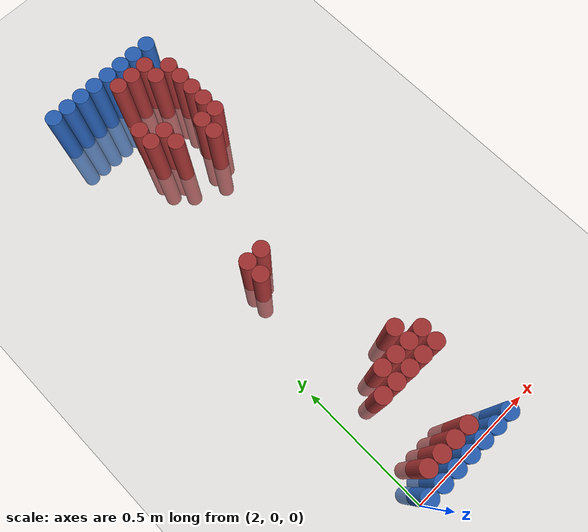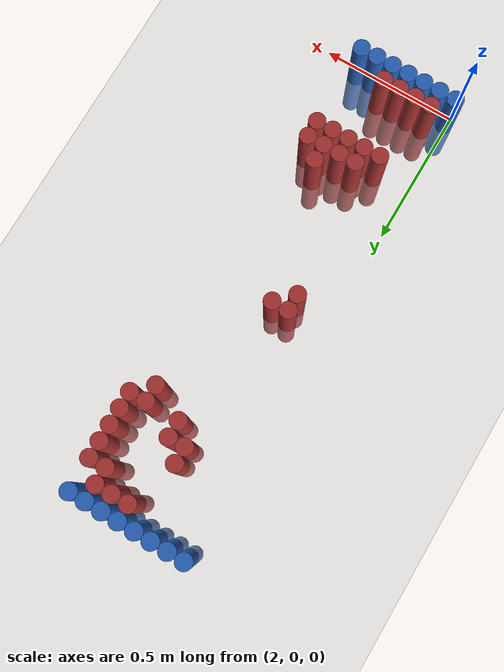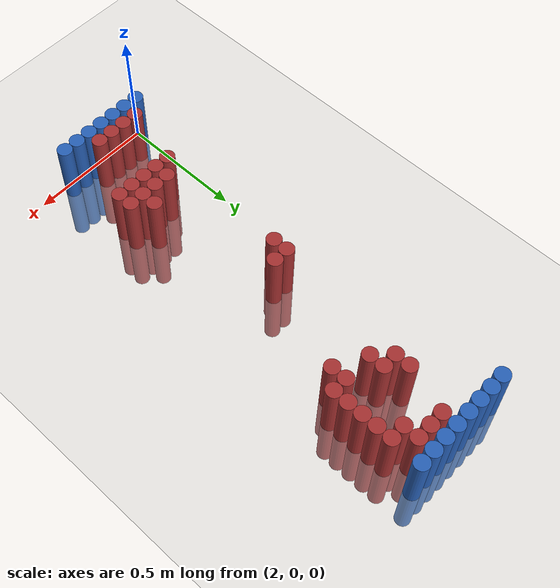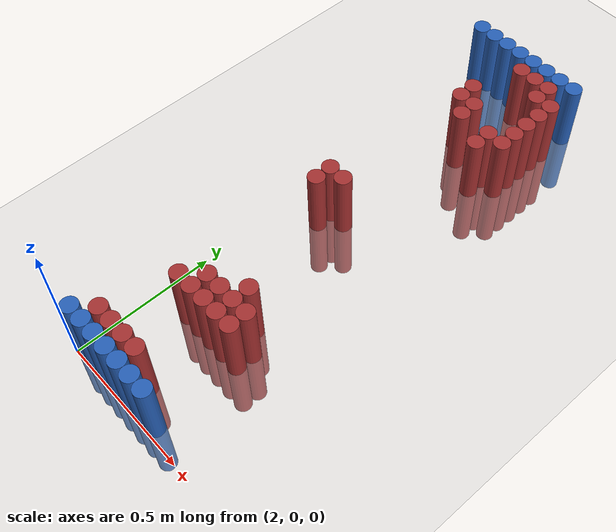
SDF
<sdf version="1.6">
 <world name="default">
  <model name="ground_plane">
   <static>1</static>
   <link name="link">
    <collision name="collision">
     <geometry><plane><normal>0 0 1</normal><size>100 100</size></plane></geometry>
     <surface><friction><ode><mu>100</mu><mu2>50</mu2></ode></friction></surface>
    </collision>
    <visual name="visual">
     <cast_shadows>0</cast_shadows>
     <geometry><plane><normal>0 0 1</normal><size>100 100</size></plane></geometry>
     <material>
      <script><uri>file://media/materials/scripts/gazebo.material</uri><name>Gazebo/Grey</name></script>
     </material>
    </visual>
   </link>
  </model>
  <model name="unit_cylinder_93">
   <static>1</static>
   <pose>2.010000 0.030000 0.000000 0.000000 0.000000 0.000000</pose>
   <link name="link">
    <inertial>
     <mass>1</mass>
     <inertia><ixx>0.145833</ixx><ixy>0</ixy><ixz>0</ixz><iyy>0.145833</iyy><iyz>0</iyz><izz>0.125</izz></inertia>
    </inertial>
    <collision name="collision">
     <geometry><cylinder><radius>0.030000</radius><length>0.5</length></cylinder></geometry>
    </collision>
    <visual name="visual">
     <geometry><cylinder><radius>0.030000</radius><length>0.5</length></cylinder></geometry>
     <material>
      <ambient>0.152000 0.379000 0.720000 1</ambient>
      <diffuse>0.152000 0.379000 0.720000 1</diffuse>
     </material>
     <material>
      <script><name>Gazebo/Grey</name><uri>file://media/materials/scripts/gazebo.material</uri></script>
     </material>
    </visual>
   </link>
  </model>
  <model name="unit_cylinder_94">
   <static>1</static>
   <pose>2.010000 1.770000 0.000000 0.000000 0.000000 0.000000</pose>
   <link name="link">
    <inertial>
     <mass>1</mass>
     <inertia><ixx>0.145833</ixx><ixy>0</ixy><ixz>0</ixz><iyy>0.145833</iyy><iyz>0</iyz><izz>0.125</izz></inertia>
    </inertial>
    <collision name="collision">
     <geometry><cylinder><radius>0.030000</radius><length>0.5</length></cylinder></geometry>
    </collision>
    <visual name="visual">
     <geometry><cylinder><radius>0.030000</radius><length>0.5</length></cylinder></geometry>
     <material>
      <ambient>0.152000 0.379000 0.720000 1</ambient>
      <diffuse>0.152000 0.379000 0.720000 1</diffuse>
     </material>
     <material>
      <script><name>Gazebo/Grey</name><uri>file://media/materials/scripts/gazebo.material</uri></script>
     </material>
    </visual>
   </link>
  </model>
  <model name="unit_cylinder_95">
   <static>1</static>
   <pose>2.070000 1.770000 0.000000 0.000000 0.000000 0.000000</pose>
   <link name="link">
    <inertial>
     <mass>1</mass>
     <inertia><ixx>0.145833</ixx><ixy>0</ixy><ixz>0</ixz><iyy>0.145833</iyy><iyz>0</iyz><izz>0.125</izz></inertia>
    </inertial>
    <collision name="collision">
     <geometry><cylinder><radius>0.030000</radius><length>0.5</length></cylinder></geometry>
    </collision>
    <visual name="visual">
     <geometry><cylinder><radius>0.030000</radius><length>0.5</length></cylinder></geometry>
     <material>
      <ambient>0.152000 0.379000 0.720000 1</ambient>
      <diffuse>0.152000 0.379000 0.720000 1</diffuse>
     </material>
     <material>
      <script><name>Gazebo/Grey</name><uri>file://media/materials/scripts/gazebo.material</uri></script>
     </material>
    </visual>
   </link>
  </model>
  <model name="unit_cylinder_96">
   <static>1</static>
   <pose>2.130000 1.770000 0.000000 0.000000 0.000000 0.000000</pose>
   <link name="link">
    <inertial>
     <mass>1</mass>
     <inertia><ixx>0.145833</ixx><ixy>0</ixy><ixz>0</ixz><iyy>0.145833</iyy><iyz>0</iyz><izz>0.125</izz></inertia>
    </inertial>
    <collision name="collision">
     <geometry><cylinder><radius>0.030000</radius><length>0.5</length></cylinder></geometry>
    </collision>
    <visual name="visual">
     <geometry><cylinder><radius>0.030000</radius><length>0.5</length></cylinder></geometry>
     <material>
      <ambient>0.152000 0.379000 0.720000 1</ambient>
      <diffuse>0.152000 0.379000 0.720000 1</diffuse>
     </material>
     <material>
      <script><name>Gazebo/Grey</name><uri>file://media/materials/scripts/gazebo.material</uri></script>
     </material>
    </visual>
   </link>
  </model>
  <model name="unit_cylinder_97">
   <static>1</static>
   <pose>2.190000 1.770000 0.000000 0.000000 0.000000 0.000000</pose>
   <link name="link">
    <inertial>
     <mass>1</mass>
     <inertia><ixx>0.145833</ixx><ixy>0</ixy><ixz>0</ixz><iyy>0.145833</iyy><iyz>0</iyz><izz>0.125</izz></inertia>
    </inertial>
    <collision name="collision">
     <geometry><cylinder><radius>0.030000</radius><length>0.5</length></cylinder></geometry>
    </collision>
    <visual name="visual">
     <geometry><cylinder><radius>0.030000</radius><length>0.5</length></cylinder></geometry>
     <material>
      <ambient>0.152000 0.379000 0.720000 1</ambient>
      <diffuse>0.152000 0.379000 0.720000 1</diffuse>
     </material>
     <material>
      <script><name>Gazebo/Grey</name><uri>file://media/materials/scripts/gazebo.material</uri></script>
     </material>
    </visual>
   </link>
  </model>
  <model name="unit_cylinder_98">
   <static>1</static>
   <pose>2.250000 1.770000 0.000000 0.000000 0.000000 0.000000</pose>
   <link name="link">
    <inertial>
     <mass>1</mass>
     <inertia><ixx>0.145833</ixx><ixy>0</ixy><ixz>0</ixz><iyy>0.145833</iyy><iyz>0</iyz><izz>0.125</izz></inertia>
    </inertial>
    <collision name="collision">
     <geometry><cylinder><radius>0.030000</radius><length>0.5</length></cylinder></geometry>
    </collision>
    <visual name="visual">
     <geometry><cylinder><radius>0.030000</radius><length>0.5</length></cylinder></geometry>
     <material>
      <ambient>0.152000 0.379000 0.720000 1</ambient>
      <diffuse>0.152000 0.379000 0.720000 1</diffuse>
     </material>
     <material>
      <script><name>Gazebo/Grey</name><uri>file://media/materials/scripts/gazebo.material</uri></script>
     </material>
    </visual>
   </link>
  </model>
  <model name="unit_cylinder_99">
   <static>1</static>
   <pose>2.310000 1.770000 0.000000 0.000000 0.000000 0.000000</pose>
   <link name="link">
    <inertial>
     <mass>1</mass>
     <inertia><ixx>0.145833</ixx><ixy>0</ixy><ixz>0</ixz><iyy>0.145833</iyy><iyz>0</iyz><izz>0.125</izz></inertia>
    </inertial>
    <collision name="collision">
     <geometry><cylinder><radius>0.030000</radius><length>0.5</length></cylinder></geometry>
    </collision>
    <visual name="visual">
     <geometry><cylinder><radius>0.030000</radius><length>0.5</length></cylinder></geometry>
     <material>
      <ambient>0.152000 0.379000 0.720000 1</ambient>
      <diffuse>0.152000 0.379000 0.720000 1</diffuse>
     </material>
     <material>
      <script><name>Gazebo/Grey</name><uri>file://media/materials/scripts/gazebo.material</uri></script>
     </material>
    </visual>
   </link>
  </model>
  <model name="unit_cylinder_100">
   <static>1</static>
   <pose>2.370000 1.770000 0.000000 0.000000 0.000000 0.000000</pose>
   <link name="link">
    <inertial>
     <mass>1</mass>
     <inertia><ixx>0.145833</ixx><ixy>0</ixy><ixz>0</ixz><iyy>0.145833</iyy><iyz>0</iyz><izz>0.125</izz></inertia>
    </inertial>
    <collision name="collision">
     <geometry><cylinder><radius>0.030000</radius><length>0.5</length></cylinder></geometry>
    </collision>
    <visual name="visual">
     <geometry><cylinder><radius>0.030000</radius><length>0.5</length></cylinder></geometry>
     <material>
      <ambient>0.152000 0.379000 0.720000 1</ambient>
      <diffuse>0.152000 0.379000 0.720000 1</diffuse>
     </material>
     <material>
      <script><name>Gazebo/Grey</name><uri>file://media/materials/scripts/gazebo.material</uri></script>
     </material>
    </visual>
   </link>
  </model>
  <model name="unit_cylinder_101">
   <static>1</static>
   <pose>2.430000 1.770000 0.000000 0.000000 0.000000 0.000000</pose>
   <link name="link">
    <inertial>
     <mass>1</mass>
     <inertia><ixx>0.145833</ixx><ixy>0</ixy><ixz>0</ixz><iyy>0.145833</iyy><iyz>0</iyz><izz>0.125</izz></inertia>
    </inertial>
    <collision name="collision">
     <geometry><cylinder><radius>0.030000</radius><length>0.5</length></cylinder></geometry>
    </collision>
    <visual name="visual">
     <geometry><cylinder><radius>0.030000</radius><length>0.5</length></cylinder></geometry>
     <material>
      <ambient>0.152000 0.379000 0.720000 1</ambient>
      <diffuse>0.152000 0.379000 0.720000 1</diffuse>
     </material>
     <material>
      <script><name>Gazebo/Grey</name><uri>file://media/materials/scripts/gazebo.material</uri></script>
     </material>
    </visual>
   </link>
  </model>
  <model name="unit_cylinder_125">
   <static>1</static>
   <pose>2.250000 1.710000 0.000000 0.000000 0.000000 0.000000</pose>
   <link name="link">
    <inertial>
     <mass>1</mass>
     <inertia><ixx>0.145833</ixx><ixy>0</ixy><ixz>0</ixz><iyy>0.145833</iyy><iyz>0</iyz><izz>0.125</izz></inertia>
    </inertial>
    <collision name="collision">
     <geometry><cylinder><radius>0.030000</radius><length>0.5</length></cylinder></geometry>
    </collision>
    <visual name="visual">
     <geometry><cylinder><radius>0.030000</radius><length>0.5</length></cylinder></geometry>
     <material>
      <ambient>0.648000 0.192000 0.192000 1</ambient>
      <diffuse>0.648000 0.192000 0.192000 1</diffuse>
     </material>
     <material>
      <script><name>Gazebo/Grey</name><uri>file://media/materials/scripts/gazebo.material</uri></script>
     </material>
    </visual>
   </link>
  </model>
  <model name="unit_cylinder_126">
   <static>1</static>
   <pose>2.310000 1.710000 0.000000 0.000000 0.000000 0.000000</pose>
   <link name="link">
    <inertial>
     <mass>1</mass>
     <inertia><ixx>0.145833</ixx><ixy>0</ixy><ixz>0</ixz><iyy>0.145833</iyy><iyz>0</iyz><izz>0.125</izz></inertia>
    </inertial>
    <collision name="collision">
     <geometry><cylinder><radius>0.030000</radius><length>0.5</length></cylinder></geometry>
    </collision>
    <visual name="visual">
     <geometry><cylinder><radius>0.030000</radius><length>0.5</length></cylinder></geometry>
     <material>
      <ambient>0.648000 0.192000 0.192000 1</ambient>
      <diffuse>0.648000 0.192000 0.192000 1</diffuse>
     </material>
     <material>
      <script><name>Gazebo/Grey</name><uri>file://media/materials/scripts/gazebo.material</uri></script>
     </material>
    </visual>
   </link>
  </model>
  <model name="unit_cylinder_127">
   <static>1</static>
   <pose>2.370000 1.710000 0.000000 0.000000 0.000000 0.000000</pose>
   <link name="link">
    <inertial>
     <mass>1</mass>
     <inertia><ixx>0.145833</ixx><ixy>0</ixy><ixz>0</ixz><iyy>0.145833</iyy><iyz>0</iyz><izz>0.125</izz></inertia>
    </inertial>
    <collision name="collision">
     <geometry><cylinder><radius>0.030000</radius><length>0.5</length></cylinder></geometry>
    </collision>
    <visual name="visual">
     <geometry><cylinder><radius>0.030000</radius><length>0.5</length></cylinder></geometry>
     <material>
      <ambient>0.648000 0.192000 0.192000 1</ambient>
      <diffuse>0.648000 0.192000 0.192000 1</diffuse>
     </material>
     <material>
      <script><name>Gazebo/Grey</name><uri>file://media/materials/scripts/gazebo.material</uri></script>
     </material>
    </visual>
   </link>
  </model>
  <model name="unit_cylinder_138">
   <static>1</static>
   <pose>2.370000 1.650000 0.000000 0.000000 0.000000 0.000000</pose>
   <link name="link">
    <inertial>
     <mass>1</mass>
     <inertia><ixx>0.145833</ixx><ixy>0</ixy><ixz>0</ixz><iyy>0.145833</iyy><iyz>0</iyz><izz>0.125</izz></inertia>
    </inertial>
    <collision name="collision">
     <geometry><cylinder><radius>0.030000</radius><length>0.5</length></cylinder></geometry>
    </collision>
    <visual name="visual">
     <geometry><cylinder><radius>0.030000</radius><length>0.5</length></cylinder></geometry>
     <material>
      <ambient>0.648000 0.192000 0.192000 1</ambient>
      <diffuse>0.648000 0.192000 0.192000 1</diffuse>
     </material>
     <material>
      <script><name>Gazebo/Grey</name><uri>file://media/materials/scripts/gazebo.material</uri></script>
     </material>
    </visual>
   </link>
  </model>
  <model name="unit_cylinder_139">
   <static>1</static>
   <pose>2.430000 1.650000 0.000000 0.000000 0.000000 0.000000</pose>
   <link name="link">
    <inertial>
     <mass>1</mass>
     <inertia><ixx>0.145833</ixx><ixy>0</ixy><ixz>0</ixz><iyy>0.145833</iyy><iyz>0</iyz><izz>0.125</izz></inertia>
    </inertial>
    <collision name="collision">
     <geometry><cylinder><radius>0.030000</radius><length>0.5</length></cylinder></geometry>
    </collision>
    <visual name="visual">
     <geometry><cylinder><radius>0.030000</radius><length>0.5</length></cylinder></geometry>
     <material>
      <ambient>0.648000 0.192000 0.192000 1</ambient>
      <diffuse>0.648000 0.192000 0.192000 1</diffuse>
     </material>
     <material>
      <script><name>Gazebo/Grey</name><uri>file://media/materials/scripts/gazebo.material</uri></script>
     </material>
    </visual>
   </link>
  </model>
  <model name="unit_cylinder_147">
   <static>1</static>
   <pose>2.430000 1.590000 0.000000 0.000000 0.000000 0.000000</pose>
   <link name="link">
    <inertial>
     <mass>1</mass>
     <inertia><ixx>0.145833</ixx><ixy>0</ixy><ixz>0</ixz><iyy>0.145833</iyy><iyz>0</iyz><izz>0.125</izz></inertia>
    </inertial>
    <collision name="collision">
     <geometry><cylinder><radius>0.030000</radius><length>0.5</length></cylinder></geometry>
    </collision>
    <visual name="visual">
     <geometry><cylinder><radius>0.030000</radius><length>0.5</length></cylinder></geometry>
     <material>
      <ambient>0.648000 0.192000 0.192000 1</ambient>
      <diffuse>0.648000 0.192000 0.192000 1</diffuse>
     </material>
     <material>
      <script><name>Gazebo/Grey</name><uri>file://media/materials/scripts/gazebo.material</uri></script>
     </material>
    </visual>
   </link>
  </model>
  <model name="unit_cylinder_156">
   <static>1</static>
   <pose>2.190000 1.530000 0.000000 0.000000 0.000000 0.000000</pose>
   <link name="link">
    <inertial>
     <mass>1</mass>
     <inertia><ixx>0.145833</ixx><ixy>0</ixy><ixz>0</ixz><iyy>0.145833</iyy><iyz>0</iyz><izz>0.125</izz></inertia>
    </inertial>
    <collision name="collision">
     <geometry><cylinder><radius>0.030000</radius><length>0.5</length></cylinder></geometry>
    </collision>
    <visual name="visual">
     <geometry><cylinder><radius>0.030000</radius><length>0.5</length></cylinder></geometry>
     <material>
      <ambient>0.648000 0.192000 0.192000 1</ambient>
      <diffuse>0.648000 0.192000 0.192000 1</diffuse>
     </material>
     <material>
      <script><name>Gazebo/Grey</name><uri>file://media/materials/scripts/gazebo.material</uri></script>
     </material>
    </visual>
   </link>
  </model>
  <model name="unit_cylinder_157">
   <static>1</static>
   <pose>2.430000 1.530000 0.000000 0.000000 0.000000 0.000000</pose>
   <link name="link">
    <inertial>
     <mass>1</mass>
     <inertia><ixx>0.145833</ixx><ixy>0</ixy><ixz>0</ixz><iyy>0.145833</iyy><iyz>0</iyz><izz>0.125</izz></inertia>
    </inertial>
    <collision name="collision">
     <geometry><cylinder><radius>0.030000</radius><length>0.5</length></cylinder></geometry>
    </collision>
    <visual name="visual">
     <geometry><cylinder><radius>0.030000</radius><length>0.5</length></cylinder></geometry>
     <material>
      <ambient>0.648000 0.192000 0.192000 1</ambient>
      <diffuse>0.648000 0.192000 0.192000 1</diffuse>
     </material>
     <material>
      <script><name>Gazebo/Grey</name><uri>file://media/materials/scripts/gazebo.material</uri></script>
     </material>
    </visual>
   </link>
  </model>
  <model name="unit_cylinder_159">
   <static>1</static>
   <pose>2.190000 1.470000 0.000000 0.000000 0.000000 0.000000</pose>
   <link name="link">
    <inertial>
     <mass>1</mass>
     <inertia><ixx>0.145833</ixx><ixy>0</ixy><ixz>0</ixz><iyy>0.145833</iyy><iyz>0</iyz><izz>0.125</izz></inertia>
    </inertial>
    <collision name="collision">
     <geometry><cylinder><radius>0.030000</radius><length>0.5</length></cylinder></geometry>
    </collision>
    <visual name="visual">
     <geometry><cylinder><radius>0.030000</radius><length>0.5</length></cylinder></geometry>
     <material>
      <ambient>0.648000 0.192000 0.192000 1</ambient>
      <diffuse>0.648000 0.192000 0.192000 1</diffuse>
     </material>
     <material>
      <script><name>Gazebo/Grey</name><uri>file://media/materials/scripts/gazebo.material</uri></script>
     </material>
    </visual>
   </link>
  </model>
  <model name="unit_cylinder_160">
   <static>1</static>
   <pose>2.250000 1.470000 0.000000 0.000000 0.000000 0.000000</pose>
   <link name="link">
    <inertial>
     <mass>1</mass>
     <inertia><ixx>0.145833</ixx><ixy>0</ixy><ixz>0</ixz><iyy>0.145833</iyy><iyz>0</iyz><izz>0.125</izz></inertia>
    </inertial>
    <collision name="collision">
     <geometry><cylinder><radius>0.030000</radius><length>0.5</length></cylinder></geometry>
    </collision>
    <visual name="visual">
     <geometry><cylinder><radius>0.030000</radius><length>0.5</length></cylinder></geometry>
     <material>
      <ambient>0.648000 0.192000 0.192000 1</ambient>
      <diffuse>0.648000 0.192000 0.192000 1</diffuse>
     </material>
     <material>
      <script><name>Gazebo/Grey</name><uri>file://media/materials/scripts/gazebo.material</uri></script>
     </material>
    </visual>
   </link>
  </model>
  <model name="unit_cylinder_161">
   <static>1</static>
   <pose>2.430000 1.470000 0.000000 0.000000 0.000000 0.000000</pose>
   <link name="link">
    <inertial>
     <mass>1</mass>
     <inertia><ixx>0.145833</ixx><ixy>0</ixy><ixz>0</ixz><iyy>0.145833</iyy><iyz>0</iyz><izz>0.125</izz></inertia>
    </inertial>
    <collision name="collision">
     <geometry><cylinder><radius>0.030000</radius><length>0.5</length></cylinder></geometry>
    </collision>
    <visual name="visual">
     <geometry><cylinder><radius>0.030000</radius><length>0.5</length></cylinder></geometry>
     <material>
      <ambient>0.648000 0.192000 0.192000 1</ambient>
      <diffuse>0.648000 0.192000 0.192000 1</diffuse>
     </material>
     <material>
      <script><name>Gazebo/Grey</name><uri>file://media/materials/scripts/gazebo.material</uri></script>
     </material>
    </visual>
   </link>
  </model>
  <model name="unit_cylinder_163">
   <static>1</static>
   <pose>2.250000 1.410000 0.000000 0.000000 0.000000 0.000000</pose>
   <link name="link">
    <inertial>
     <mass>1</mass>
     <inertia><ixx>0.145833</ixx><ixy>0</ixy><ixz>0</ixz><iyy>0.145833</iyy><iyz>0</iyz><izz>0.125</izz></inertia>
    </inertial>
    <collision name="collision">
     <geometry><cylinder><radius>0.030000</radius><length>0.5</length></cylinder></geometry>
    </collision>
    <visual name="visual">
     <geometry><cylinder><radius>0.030000</radius><length>0.5</length></cylinder></geometry>
     <material>
      <ambient>0.648000 0.192000 0.192000 1</ambient>
      <diffuse>0.648000 0.192000 0.192000 1</diffuse>
     </material>
     <material>
      <script><name>Gazebo/Grey</name><uri>file://media/materials/scripts/gazebo.material</uri></script>
     </material>
    </visual>
   </link>
  </model>
  <model name="unit_cylinder_164">
   <static>1</static>
   <pose>2.370000 1.410000 0.000000 0.000000 0.000000 0.000000</pose>
   <link name="link">
    <inertial>
     <mass>1</mass>
     <inertia><ixx>0.145833</ixx><ixy>0</ixy><ixz>0</ixz><iyy>0.145833</iyy><iyz>0</iyz><izz>0.125</izz></inertia>
    </inertial>
    <collision name="collision">
     <geometry><cylinder><radius>0.030000</radius><length>0.5</length></cylinder></geometry>
    </collision>
    <visual name="visual">
     <geometry><cylinder><radius>0.030000</radius><length>0.5</length></cylinder></geometry>
     <material>
      <ambient>0.648000 0.192000 0.192000 1</ambient>
      <diffuse>0.648000 0.192000 0.192000 1</diffuse>
     </material>
     <material>
      <script><name>Gazebo/Grey</name><uri>file://media/materials/scripts/gazebo.material</uri></script>
     </material>
    </visual>
   </link>
  </model>
  <model name="unit_cylinder_165">
   <static>1</static>
   <pose>2.430000 1.410000 0.000000 0.000000 0.000000 0.000000</pose>
   <link name="link">
    <inertial>
     <mass>1</mass>
     <inertia><ixx>0.145833</ixx><ixy>0</ixy><ixz>0</ixz><iyy>0.145833</iyy><iyz>0</iyz><izz>0.125</izz></inertia>
    </inertial>
    <collision name="collision">
     <geometry><cylinder><radius>0.030000</radius><length>0.5</length></cylinder></geometry>
    </collision>
    <visual name="visual">
     <geometry><cylinder><radius>0.030000</radius><length>0.5</length></cylinder></geometry>
     <material>
      <ambient>0.648000 0.192000 0.192000 1</ambient>
      <diffuse>0.648000 0.192000 0.192000 1</diffuse>
     </material>
     <material>
      <script><name>Gazebo/Grey</name><uri>file://media/materials/scripts/gazebo.material</uri></script>
     </material>
    </visual>
   </link>
  </model>
  <model name="unit_cylinder_167">
   <static>1</static>
   <pose>2.370000 1.350000 0.000000 0.000000 0.000000 0.000000</pose>
   <link name="link">
    <inertial>
     <mass>1</mass>
     <inertia><ixx>0.145833</ixx><ixy>0</ixy><ixz>0</ixz><iyy>0.145833</iyy><iyz>0</iyz><izz>0.125</izz></inertia>
    </inertial>
    <collision name="collision">
     <geometry><cylinder><radius>0.030000</radius><length>0.5</length></cylinder></geometry>
    </collision>
    <visual name="visual">
     <geometry><cylinder><radius>0.030000</radius><length>0.5</length></cylinder></geometry>
     <material>
      <ambient>0.648000 0.192000 0.192000 1</ambient>
      <diffuse>0.648000 0.192000 0.192000 1</diffuse>
     </material>
     <material>
      <script><name>Gazebo/Grey</name><uri>file://media/materials/scripts/gazebo.material</uri></script>
     </material>
    </visual>
   </link>
  </model>
  <model name="unit_cylinder_180">
   <static>1</static>
   <pose>2.130000 0.930000 0.000000 0.000000 0.000000 0.000000</pose>
   <link name="link">
    <inertial>
     <mass>1</mass>
     <inertia><ixx>0.145833</ixx><ixy>0</ixy><ixz>0</ixz><iyy>0.145833</iyy><iyz>0</iyz><izz>0.125</izz></inertia>
    </inertial>
    <collision name="collision">
     <geometry><cylinder><radius>0.030000</radius><length>0.5</length></cylinder></geometry>
    </collision>
    <visual name="visual">
     <geometry><cylinder><radius>0.030000</radius><length>0.5</length></cylinder></geometry>
     <material>
      <ambient>0.648000 0.192000 0.192000 1</ambient>
      <diffuse>0.648000 0.192000 0.192000 1</diffuse>
     </material>
     <material>
      <script><name>Gazebo/Grey</name><uri>file://media/materials/scripts/gazebo.material</uri></script>
     </material>
    </visual>
   </link>
  </model>
  <model name="unit_cylinder_181">
   <static>1</static>
   <pose>2.190000 0.930000 0.000000 0.000000 0.000000 0.000000</pose>
   <link name="link">
    <inertial>
     <mass>1</mass>
     <inertia><ixx>0.145833</ixx><ixy>0</ixy><ixz>0</ixz><iyy>0.145833</iyy><iyz>0</iyz><izz>0.125</izz></inertia>
    </inertial>
    <collision name="collision">
     <geometry><cylinder><radius>0.030000</radius><length>0.5</length></cylinder></geometry>
    </collision>
    <visual name="visual">
     <geometry><cylinder><radius>0.030000</radius><length>0.5</length></cylinder></geometry>
     <material>
      <ambient>0.648000 0.192000 0.192000 1</ambient>
      <diffuse>0.648000 0.192000 0.192000 1</diffuse>
     </material>
     <material>
      <script><name>Gazebo/Grey</name><uri>file://media/materials/scripts/gazebo.material</uri></script>
     </material>
    </visual>
   </link>
  </model>
  <model name="unit_cylinder_182">
   <static>1</static>
   <pose>2.130000 0.870000 0.000000 0.000000 0.000000 0.000000</pose>
   <link name="link">
    <inertial>
     <mass>1</mass>
     <inertia><ixx>0.145833</ixx><ixy>0</ixy><ixz>0</ixz><iyy>0.145833</iyy><iyz>0</iyz><izz>0.125</izz></inertia>
    </inertial>
    <collision name="collision">
     <geometry><cylinder><radius>0.030000</radius><length>0.5</length></cylinder></geometry>
    </collision>
    <visual name="visual">
     <geometry><cylinder><radius>0.030000</radius><length>0.5</length></cylinder></geometry>
     <material>
      <ambient>0.648000 0.192000 0.192000 1</ambient>
      <diffuse>0.648000 0.192000 0.192000 1</diffuse>
     </material>
     <material>
      <script><name>Gazebo/Grey</name><uri>file://media/materials/scripts/gazebo.material</uri></script>
     </material>
    </visual>
   </link>
  </model>
  <model name="unit_cylinder_197">
   <static>1</static>
   <pose>2.310000 0.450000 0.000000 0.000000 0.000000 0.000000</pose>
   <link name="link">
    <inertial>
     <mass>1</mass>
     <inertia><ixx>0.145833</ixx><ixy>0</ixy><ixz>0</ixz><iyy>0.145833</iyy><iyz>0</iyz><izz>0.125</izz></inertia>
    </inertial>
    <collision name="collision">
     <geometry><cylinder><radius>0.030000</radius><length>0.5</length></cylinder></geometry>
    </collision>
    <visual name="visual">
     <geometry><cylinder><radius>0.030000</radius><length>0.5</length></cylinder></geometry>
     <material>
      <ambient>0.648000 0.192000 0.192000 1</ambient>
      <diffuse>0.648000 0.192000 0.192000 1</diffuse>
     </material>
     <material>
      <script><name>Gazebo/Grey</name><uri>file://media/materials/scripts/gazebo.material</uri></script>
     </material>
    </visual>
   </link>
  </model>
  <model name="unit_cylinder_199">
   <static>1</static>
   <pose>2.190000 0.390000 0.000000 0.000000 0.000000 0.000000</pose>
   <link name="link">
    <inertial>
     <mass>1</mass>
     <inertia><ixx>0.145833</ixx><ixy>0</ixy><ixz>0</ixz><iyy>0.145833</iyy><iyz>0</iyz><izz>0.125</izz></inertia>
    </inertial>
    <collision name="collision">
     <geometry><cylinder><radius>0.030000</radius><length>0.5</length></cylinder></geometry>
    </collision>
    <visual name="visual">
     <geometry><cylinder><radius>0.030000</radius><length>0.5</length></cylinder></geometry>
     <material>
      <ambient>0.648000 0.192000 0.192000 1</ambient>
      <diffuse>0.648000 0.192000 0.192000 1</diffuse>
     </material>
     <material>
      <script><name>Gazebo/Grey</name><uri>file://media/materials/scripts/gazebo.material</uri></script>
     </material>
    </visual>
   </link>
  </model>
  <model name="unit_cylinder_200">
   <static>1</static>
   <pose>2.250000 0.390000 0.000000 0.000000 0.000000 0.000000</pose>
   <link name="link">
    <inertial>
     <mass>1</mass>
     <inertia><ixx>0.145833</ixx><ixy>0</ixy><ixz>0</ixz><iyy>0.145833</iyy><iyz>0</iyz><izz>0.125</izz></inertia>
    </inertial>
    <collision name="collision">
     <geometry><cylinder><radius>0.030000</radius><length>0.5</length></cylinder></geometry>
    </collision>
    <visual name="visual">
     <geometry><cylinder><radius>0.030000</radius><length>0.5</length></cylinder></geometry>
     <material>
      <ambient>0.648000 0.192000 0.192000 1</ambient>
      <diffuse>0.648000 0.192000 0.192000 1</diffuse>
     </material>
     <material>
      <script><name>Gazebo/Grey</name><uri>file://media/materials/scripts/gazebo.material</uri></script>
     </material>
    </visual>
   </link>
  </model>
  <model name="unit_cylinder_201">
   <static>1</static>
   <pose>2.310000 0.390000 0.000000 0.000000 0.000000 0.000000</pose>
   <link name="link">
    <inertial>
     <mass>1</mass>
     <inertia><ixx>0.145833</ixx><ixy>0</ixy><ixz>0</ixz><iyy>0.145833</iyy><iyz>0</iyz><izz>0.125</izz></inertia>
    </inertial>
    <collision name="collision">
     <geometry><cylinder><radius>0.030000</radius><length>0.5</length></cylinder></geometry>
    </collision>
    <visual name="visual">
     <geometry><cylinder><radius>0.030000</radius><length>0.5</length></cylinder></geometry>
     <material>
      <ambient>0.648000 0.192000 0.192000 1</ambient>
      <diffuse>0.648000 0.192000 0.192000 1</diffuse>
     </material>
     <material>
      <script><name>Gazebo/Grey</name><uri>file://media/materials/scripts/gazebo.material</uri></script>
     </material>
    </visual>
   </link>
  </model>
  <model name="unit_cylinder_202">
   <static>1</static>
   <pose>2.370000 0.390000 0.000000 0.000000 0.000000 0.000000</pose>
   <link name="link">
    <inertial>
     <mass>1</mass>
     <inertia><ixx>0.145833</ixx><ixy>0</ixy><ixz>0</ixz><iyy>0.145833</iyy><iyz>0</iyz><izz>0.125</izz></inertia>
    </inertial>
    <collision name="collision">
     <geometry><cylinder><radius>0.030000</radius><length>0.5</length></cylinder></geometry>
    </collision>
    <visual name="visual">
     <geometry><cylinder><radius>0.030000</radius><length>0.5</length></cylinder></geometry>
     <material>
      <ambient>0.648000 0.192000 0.192000 1</ambient>
      <diffuse>0.648000 0.192000 0.192000 1</diffuse>
     </material>
     <material>
      <script><name>Gazebo/Grey</name><uri>file://media/materials/scripts/gazebo.material</uri></script>
     </material>
    </visual>
   </link>
  </model>
  <model name="unit_cylinder_203">
   <static>1</static>
   <pose>2.130000 0.330000 0.000000 0.000000 0.000000 0.000000</pose>
   <link name="link">
    <inertial>
     <mass>1</mass>
     <inertia><ixx>0.145833</ixx><ixy>0</ixy><ixz>0</ixz><iyy>0.145833</iyy><iyz>0</iyz><izz>0.125</izz></inertia>
    </inertial>
    <collision name="collision">
     <geometry><cylinder><radius>0.030000</radius><length>0.5</length></cylinder></geometry>
    </collision>
    <visual name="visual">
     <geometry><cylinder><radius>0.030000</radius><length>0.5</length></cylinder></geometry>
     <material>
      <ambient>0.648000 0.192000 0.192000 1</ambient>
      <diffuse>0.648000 0.192000 0.192000 1</diffuse>
     </material>
     <material>
      <script><name>Gazebo/Grey</name><uri>file://media/materials/scripts/gazebo.material</uri></script>
     </material>
    </visual>
   </link>
  </model>
  <model name="unit_cylinder_204">
   <static>1</static>
   <pose>2.190000 0.330000 0.000000 0.000000 0.000000 0.000000</pose>
   <link name="link">
    <inertial>
     <mass>1</mass>
     <inertia><ixx>0.145833</ixx><ixy>0</ixy><ixz>0</ixz><iyy>0.145833</iyy><iyz>0</iyz><izz>0.125</izz></inertia>
    </inertial>
    <collision name="collision">
     <geometry><cylinder><radius>0.030000</radius><length>0.5</length></cylinder></geometry>
    </collision>
    <visual name="visual">
     <geometry><cylinder><radius>0.030000</radius><length>0.5</length></cylinder></geometry>
     <material>
      <ambient>0.648000 0.192000 0.192000 1</ambient>
      <diffuse>0.648000 0.192000 0.192000 1</diffuse>
     </material>
     <material>
      <script><name>Gazebo/Grey</name><uri>file://media/materials/scripts/gazebo.material</uri></script>
     </material>
    </visual>
   </link>
  </model>
  <model name="unit_cylinder_205">
   <static>1</static>
   <pose>2.250000 0.330000 0.000000 0.000000 0.000000 0.000000</pose>
   <link name="link">
    <inertial>
     <mass>1</mass>
     <inertia><ixx>0.145833</ixx><ixy>0</ixy><ixz>0</ixz><iyy>0.145833</iyy><iyz>0</iyz><izz>0.125</izz></inertia>
    </inertial>
    <collision name="collision">
     <geometry><cylinder><radius>0.030000</radius><length>0.5</length></cylinder></geometry>
    </collision>
    <visual name="visual">
     <geometry><cylinder><radius>0.030000</radius><length>0.5</length></cylinder></geometry>
     <material>
      <ambient>0.648000 0.192000 0.192000 1</ambient>
      <diffuse>0.648000 0.192000 0.192000 1</diffuse>
     </material>
     <material>
      <script><name>Gazebo/Grey</name><uri>file://media/materials/scripts/gazebo.material</uri></script>
     </material>
    </visual>
   </link>
  </model>
  <model name="unit_cylinder_206">
   <static>1</static>
   <pose>2.310000 0.330000 0.000000 0.000000 0.000000 0.000000</pose>
   <link name="link">
    <inertial>
     <mass>1</mass>
     <inertia><ixx>0.145833</ixx><ixy>0</ixy><ixz>0</ixz><iyy>0.145833</iyy><iyz>0</iyz><izz>0.125</izz></inertia>
    </inertial>
    <collision name="collision">
     <geometry><cylinder><radius>0.030000</radius><length>0.5</length></cylinder></geometry>
    </collision>
    <visual name="visual">
     <geometry><cylinder><radius>0.030000</radius><length>0.5</length></cylinder></geometry>
     <material>
      <ambient>0.648000 0.192000 0.192000 1</ambient>
      <diffuse>0.648000 0.192000 0.192000 1</diffuse>
     </material>
     <material>
      <script><name>Gazebo/Grey</name><uri>file://media/materials/scripts/gazebo.material</uri></script>
     </material>
    </visual>
   </link>
  </model>
  <model name="unit_cylinder_207">
   <static>1</static>
   <pose>2.370000 0.330000 0.000000 0.000000 0.000000 0.000000</pose>
   <link name="link">
    <inertial>
     <mass>1</mass>
     <inertia><ixx>0.145833</ixx><ixy>0</ixy><ixz>0</ixz><iyy>0.145833</iyy><iyz>0</iyz><izz>0.125</izz></inertia>
    </inertial>
    <collision name="collision">
     <geometry><cylinder><radius>0.030000</radius><length>0.5</length></cylinder></geometry>
    </collision>
    <visual name="visual">
     <geometry><cylinder><radius>0.030000</radius><length>0.5</length></cylinder></geometry>
     <material>
      <ambient>0.648000 0.192000 0.192000 1</ambient>
      <diffuse>0.648000 0.192000 0.192000 1</diffuse>
     </material>
     <material>
      <script><name>Gazebo/Grey</name><uri>file://media/materials/scripts/gazebo.material</uri></script>
     </material>
    </visual>
   </link>
  </model>
  <model name="unit_cylinder_232">
   <static>1</static>
   <pose>2.070000 0.090000 0.000000 0.000000 0.000000 0.000000</pose>
   <link name="link">
    <inertial>
     <mass>1</mass>
     <inertia><ixx>0.145833</ixx><ixy>0</ixy><ixz>0</ixz><iyy>0.145833</iyy><iyz>0</iyz><izz>0.125</izz></inertia>
    </inertial>
    <collision name="collision">
     <geometry><cylinder><radius>0.030000</radius><length>0.5</length></cylinder></geometry>
    </collision>
    <visual name="visual">
     <geometry><cylinder><radius>0.030000</radius><length>0.5</length></cylinder></geometry>
     <material>
      <ambient>0.648000 0.192000 0.192000 1</ambient>
      <diffuse>0.648000 0.192000 0.192000 1</diffuse>
     </material>
     <material>
      <script><name>Gazebo/Grey</name><uri>file://media/materials/scripts/gazebo.material</uri></script>
     </material>
    </visual>
   </link>
  </model>
  <model name="unit_cylinder_233">
   <static>1</static>
   <pose>2.130000 0.090000 0.000000 0.000000 0.000000 0.000000</pose>
   <link name="link">
    <inertial>
     <mass>1</mass>
     <inertia><ixx>0.145833</ixx><ixy>0</ixy><ixz>0</ixz><iyy>0.145833</iyy><iyz>0</iyz><izz>0.125</izz></inertia>
    </inertial>
    <collision name="collision">
     <geometry><cylinder><radius>0.030000</radius><length>0.5</length></cylinder></geometry>
    </collision>
    <visual name="visual">
     <geometry><cylinder><radius>0.030000</radius><length>0.5</length></cylinder></geometry>
     <material>
      <ambient>0.648000 0.192000 0.192000 1</ambient>
      <diffuse>0.648000 0.192000 0.192000 1</diffuse>
     </material>
     <material>
      <script><name>Gazebo/Grey</name><uri>file://media/materials/scripts/gazebo.material</uri></script>
     </material>
    </visual>
   </link>
  </model>
  <model name="unit_cylinder_234">
   <static>1</static>
   <pose>2.190000 0.090000 0.000000 0.000000 0.000000 0.000000</pose>
   <link name="link">
    <inertial>
     <mass>1</mass>
     <inertia><ixx>0.145833</ixx><ixy>0</ixy><ixz>0</ixz><iyy>0.145833</iyy><iyz>0</iyz><izz>0.125</izz></inertia>
    </inertial>
    <collision name="collision">
     <geometry><cylinder><radius>0.030000</radius><length>0.5</length></cylinder></geometry>
    </collision>
    <visual name="visual">
     <geometry><cylinder><radius>0.030000</radius><length>0.5</length></cylinder></geometry>
     <material>
      <ambient>0.648000 0.192000 0.192000 1</ambient>
      <diffuse>0.648000 0.192000 0.192000 1</diffuse>
     </material>
     <material>
      <script><name>Gazebo/Grey</name><uri>file://media/materials/scripts/gazebo.material</uri></script>
     </material>
    </visual>
   </link>
  </model>
  <model name="unit_cylinder_235">
   <static>1</static>
   <pose>2.250000 0.090000 0.000000 0.000000 0.000000 0.000000</pose>
   <link name="link">
    <inertial>
     <mass>1</mass>
     <inertia><ixx>0.145833</ixx><ixy>0</ixy><ixz>0</ixz><iyy>0.145833</iyy><iyz>0</iyz><izz>0.125</izz></inertia>
    </inertial>
    <collision name="collision">
     <geometry><cylinder><radius>0.030000</radius><length>0.5</length></cylinder></geometry>
    </collision>
    <visual name="visual">
     <geometry><cylinder><radius>0.030000</radius><length>0.5</length></cylinder></geometry>
     <material>
      <ambient>0.648000 0.192000 0.192000 1</ambient>
      <diffuse>0.648000 0.192000 0.192000 1</diffuse>
     </material>
     <material>
      <script><name>Gazebo/Grey</name><uri>file://media/materials/scripts/gazebo.material</uri></script>
     </material>
    </visual>
   </link>
  </model>
  <model name="unit_cylinder_250">
   <static>1</static>
   <pose>2.070000 0.030000 0.000000 0.000000 0.000000 0.000000</pose>
   <link name="link">
    <inertial>
     <mass>1</mass>
     <inertia><ixx>0.145833</ixx><ixy>0</ixy><ixz>0</ixz><iyy>0.145833</iyy><iyz>0</iyz><izz>0.125</izz></inertia>
    </inertial>
    <collision name="collision">
     <geometry><cylinder><radius>0.030000</radius><length>0.5</length></cylinder></geometry>
    </collision>
    <visual name="visual">
     <geometry><cylinder><radius>0.030000</radius><length>0.5</length></cylinder></geometry>
     <material>
      <ambient>0.152000 0.379000 0.720000 1</ambient>
      <diffuse>0.152000 0.379000 0.720000 1</diffuse>
     </material>
     <material>
      <script><name>Gazebo/Grey</name><uri>file://media/materials/scripts/gazebo.material</uri></script>
     </material>
    </visual>
   </link>
  </model>
  <model name="unit_cylinder_251">
   <static>1</static>
   <pose>2.130000 0.030000 0.000000 0.000000 0.000000 0.000000</pose>
   <link name="link">
    <inertial>
     <mass>1</mass>
     <inertia><ixx>0.145833</ixx><ixy>0</ixy><ixz>0</ixz><iyy>0.145833</iyy><iyz>0</iyz><izz>0.125</izz></inertia>
    </inertial>
    <collision name="collision">
     <geometry><cylinder><radius>0.030000</radius><length>0.5</length></cylinder></geometry>
    </collision>
    <visual name="visual">
     <geometry><cylinder><radius>0.030000</radius><length>0.5</length></cylinder></geometry>
     <material>
      <ambient>0.152000 0.379000 0.720000 1</ambient>
      <diffuse>0.152000 0.379000 0.720000 1</diffuse>
     </material>
     <material>
      <script><name>Gazebo/Grey</name><uri>file://media/materials/scripts/gazebo.material</uri></script>
     </material>
    </visual>
   </link>
  </model>
  <model name="unit_cylinder_252">
   <static>1</static>
   <pose>2.190000 0.030000 0.000000 0.000000 0.000000 0.000000</pose>
   <link name="link">
    <inertial>
     <mass>1</mass>
     <inertia><ixx>0.145833</ixx><ixy>0</ixy><ixz>0</ixz><iyy>0.145833</iyy><iyz>0</iyz><izz>0.125</izz></inertia>
    </inertial>
    <collision name="collision">
     <geometry><cylinder><radius>0.030000</radius><length>0.5</length></cylinder></geometry>
    </collision>
    <visual name="visual">
     <geometry><cylinder><radius>0.030000</radius><length>0.5</length></cylinder></geometry>
     <material>
      <ambient>0.152000 0.379000 0.720000 1</ambient>
      <diffuse>0.152000 0.379000 0.720000 1</diffuse>
     </material>
     <material>
      <script><name>Gazebo/Grey</name><uri>file://media/materials/scripts/gazebo.material</uri></script>
     </material>
    </visual>
   </link>
  </model>
  <model name="unit_cylinder_253">
   <static>1</static>
   <pose>2.250000 0.030000 0.000000 0.000000 0.000000 0.000000</pose>
   <link name="link">
    <inertial>
     <mass>1</mass>
     <inertia><ixx>0.145833</ixx><ixy>0</ixy><ixz>0</ixz><iyy>0.145833</iyy><iyz>0</iyz><izz>0.125</izz></inertia>
    </inertial>
    <collision name="collision">
     <geometry><cylinder><radius>0.030000</radius><length>0.5</length></cylinder></geometry>
    </collision>
    <visual name="visual">
     <geometry><cylinder><radius>0.030000</radius><length>0.5</length></cylinder></geometry>
     <material>
      <ambient>0.152000 0.379000 0.720000 1</ambient>
      <diffuse>0.152000 0.379000 0.720000 1</diffuse>
     </material>
     <material>
      <script><name>Gazebo/Grey</name><uri>file://media/materials/scripts/gazebo.material</uri></script>
     </material>
    </visual>
   </link>
  </model>
  <model name="unit_cylinder_254">
   <static>1</static>
   <pose>2.310000 0.030000 0.000000 0.000000 0.000000 0.000000</pose>
   <link name="link">
    <inertial>
     <mass>1</mass>
     <inertia><ixx>0.145833</ixx><ixy>0</ixy><ixz>0</ixz><iyy>0.145833</iyy><iyz>0</iyz><izz>0.125</izz></inertia>
    </inertial>
    <collision name="collision">
     <geometry><cylinder><radius>0.030000</radius><length>0.5</length></cylinder></geometry>
    </collision>
    <visual name="visual">
     <geometry><cylinder><radius>0.030000</radius><length>0.5</length></cylinder></geometry>
     <material>
      <ambient>0.152000 0.379000 0.720000 1</ambient>
      <diffuse>0.152000 0.379000 0.720000 1</diffuse>
     </material>
     <material>
      <script><name>Gazebo/Grey</name><uri>file://media/materials/scripts/gazebo.material</uri></script>
     </material>
    </visual>
   </link>
  </model>
  <model name="unit_cylinder_255">
   <static>1</static>
   <pose>2.370000 0.030000 0.000000 0.000000 0.000000 0.000000</pose>
   <link name="link">
    <inertial>
     <mass>1</mass>
     <inertia><ixx>0.145833</ixx><ixy>0</ixy><ixz>0</ixz><iyy>0.145833</iyy><iyz>0</iyz><izz>0.125</izz></inertia>
    </inertial>
    <collision name="collision">
     <geometry><cylinder><radius>0.030000</radius><length>0.5</length></cylinder></geometry>
    </collision>
    <visual name="visual">
     <geometry><cylinder><radius>0.030000</radius><length>0.5</length></cylinder></geometry>
     <material>
      <ambient>0.152000 0.379000 0.720000 1</ambient>
      <diffuse>0.152000 0.379000 0.720000 1</diffuse>
     </material>
     <material>
      <script><name>Gazebo/Grey</name><uri>file://media/materials/scripts/gazebo.material</uri></script>
     </material>
    </visual>
   </link>
  </model>
 </world>
</sdf>
